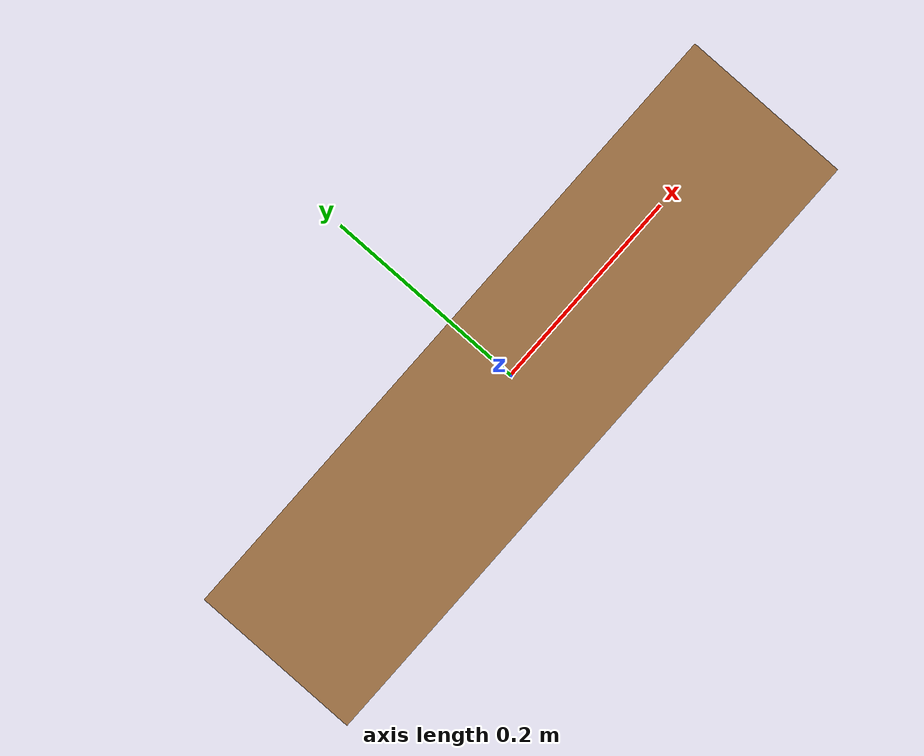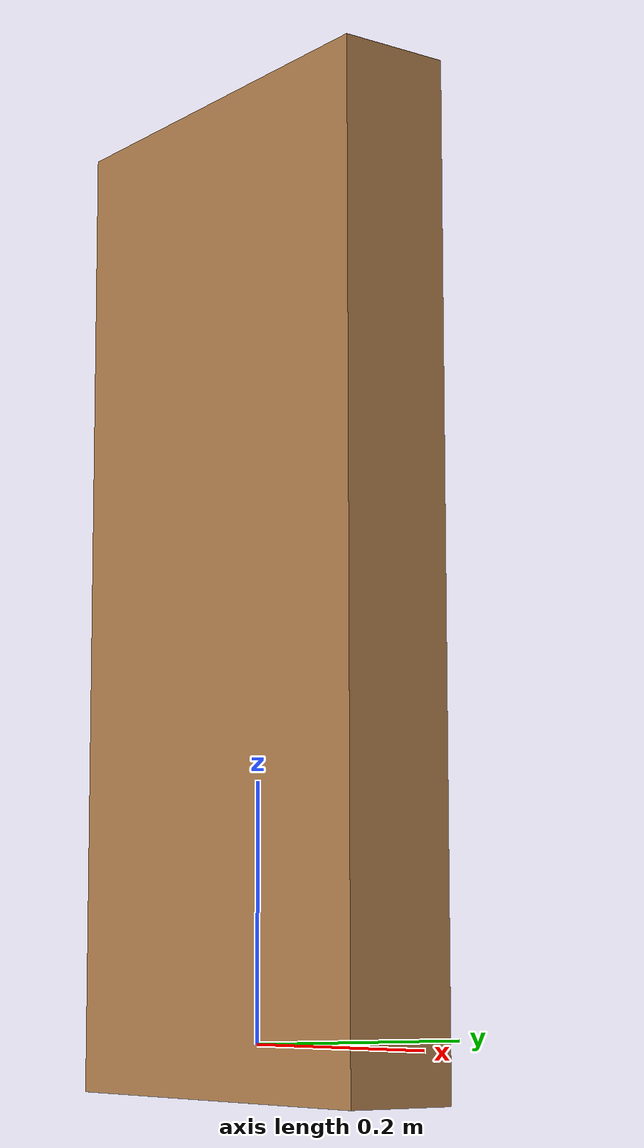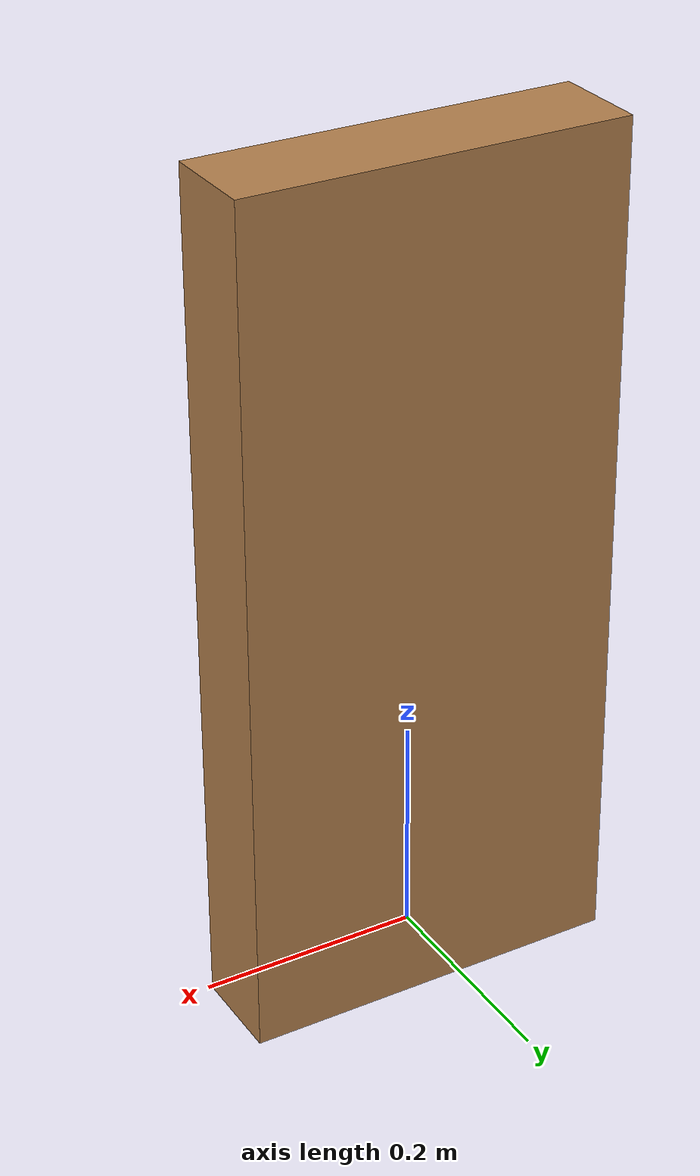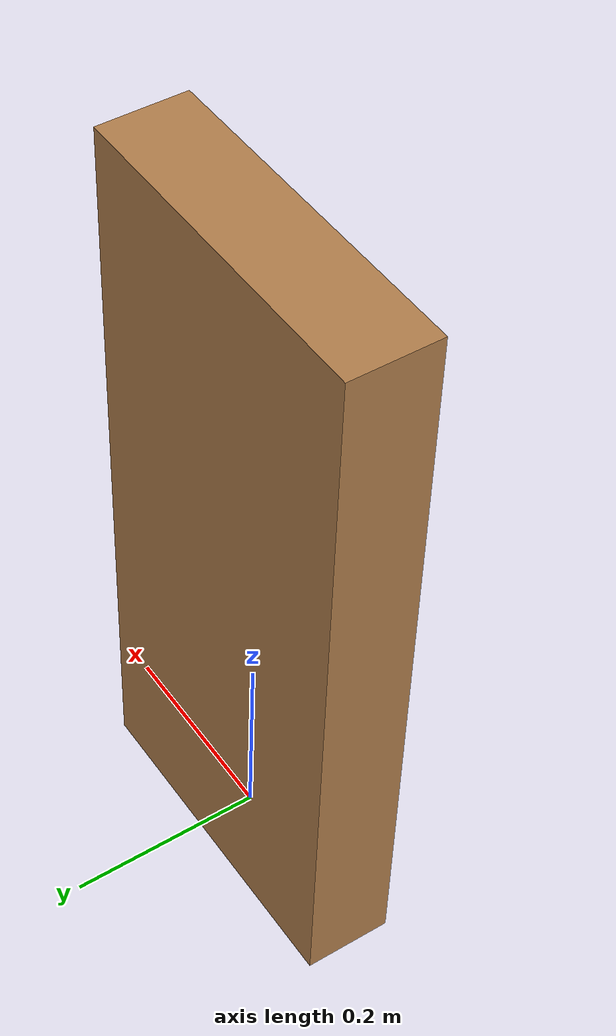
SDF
<?xml version="1.0"?>
<sdf version="1.6">
  <model name="robot_base">
    <!-- Make the model static, so it does not move -->
    <static>true</static>

    <!-- Define the link of the model -->
    <link name="link">
      <!-- Pose of the link -->
      <pose>0 0 0.35 0 0 0</pose>

      <!-- Define the collision geometry of the model -->
      <collision name="surface">
        <pose>0 0 -0.015 0 0 0</pose>
        <geometry>
          <box>
            <size>0.35 0.09 0.78</size> <!-- Size of the box (length, width, height) -->
          </box>
        </geometry>
      </collision>

      <!-- Define the visual appearance of the model -->
      <visual name="visual">
        <pose>0 0 0 0 0 0</pose> <!-- Pose of the visual (relative to the link) -->
        <geometry>
          <box>
            <size>0.35 0.09 0.78</size> <!-- Size of the visual box (length, width, height) -->
          </box>
        </geometry>
        <material>
          <script>
            <uri>file://media/materials/scripts/gazebo.material</uri>
            <name>Gazebo/Wood</name> <!-- Material name for the visual -->
          </script>
        </material>
      </visual>
    </link>
  </model>
</sdf>
